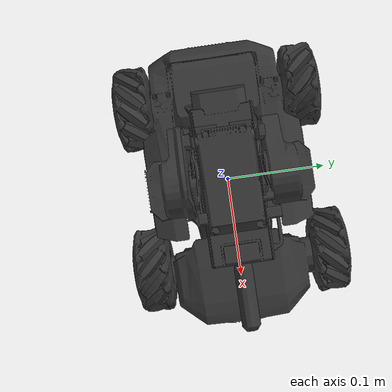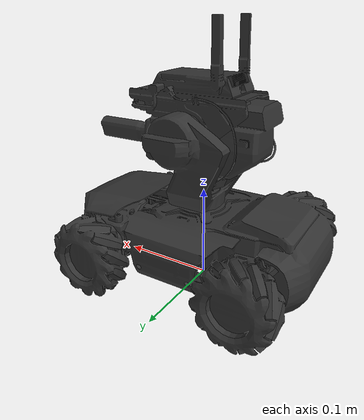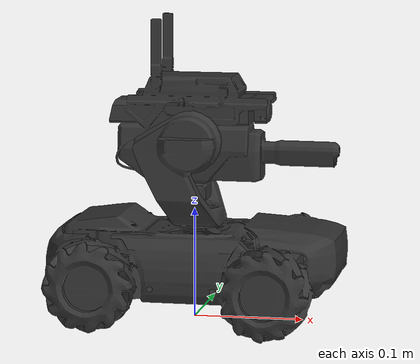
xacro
<?xml version="1.0"?>
<robot name="robomaster_s1"
  xmlns:xacro="http://www.ros.org/wiki/xacro">
  <xacro:property name="PI" value="3.1415926535897931" />

  <material name="dark_grey">
    <color rgba="0.2 0.2 0.2 1.0" />
  </material>

  <!-- base_link to base -->
  <link name="base_link"/>
  <joint name="base_link_joint" type="fixed">
    <origin xyz="0 0 0" rpy="0 0 0" />
    <parent link="base_link"/>
    <child link="base" />
  </joint>

  <!-- Definition of robot base -->
  <link name="base">
    <visual>
      <origin xyz="0 0 0" rpy="0 0 ${PI/2.0}"/>
      <geometry>
        <mesh filename="package://robomaster_description/meshes/visual/base.stl"/>
      </geometry>
      <material name="dark_grey" />
    </visual>
    <inertial>
      <!-- Center of mass, Dummy TODO -->
      <origin xyz="0 0 0" rpy="0 0 0"/>
      <mass value="1.0"/>
      <!-- Moments of inertia: ( chassis without wheels ) -->
      <inertia ixx="1e-5" ixy="0" ixz="0" iyy="1e-5" iyz="0" izz="1e-5"/>
    </inertial>
  </link>

  <!-- First axis of gimbal -->
  <joint name="gimbal_yaw_joint" type="revolute">
    <origin xyz="0 0 0.09" rpy="0 0 0" />
    <axis xyz="0 0 1"/>
    <parent link="base"/>
    <child link="gimbal_base" />
    <limit effort="1000.0" lower="${-1.5*PI}" upper="${1.5*PI}" velocity="${2.0*PI}"/>
  </joint>

  <!-- Base of gimbal -->
  <link name="gimbal_base">
    <visual>
      <origin xyz="0 0 -0.09" rpy="0 0 ${PI/2.0}"/>
      <geometry>
        <mesh filename="package://robomaster_description/meshes/visual/gimbal_base.stl"/>
      </geometry>
      <material name="dark_grey" />
    </visual>
    <inertial>
      <!-- Center of mass, Dummy TODO -->
      <origin xyz="0 0 0" rpy="0 0 0"/>
      <mass value="1.0"/>
      <!-- Moments of inertia: ( chassis without wheels ) -->
      <inertia ixx="1e-5" ixy="0" ixz="0" iyy="1e-5" iyz="0" izz="1e-5"/>
    </inertial>
  </link>

  <!-- Second axis of gimbal -->
  <joint name="gimbal_pitch_joint" type="revolute">
    <origin xyz="0 0 0.075" rpy="0 0 0" />
    <axis xyz="0 1 0"/>
    <parent link="gimbal_base"/>
    <child link="gimbal_head" />
    <limit effort="1000.0" lower="${-PI/4.0}" upper="${PI/4.0}" velocity="${2.0*PI}"/>
  </joint>

  <!-- Gimbal head -->
  <link name="gimbal_head">
    <visual>
      <origin xyz="0 0 -0.165" rpy="0 0 ${PI/2.0}"/>
      <geometry>
        <mesh filename="package://robomaster_description/meshes/visual/gimbal_head.stl"/>
      </geometry>
      <material name="dark_grey" />
    </visual>
    <inertial>
      <!-- Center of mass, Dummy TODO -->
      <origin xyz="0 0 0" rpy="0 0 0"/>
      <mass value="1.0"/>
      <!-- Moments of inertia: ( chassis without wheels ) -->
      <inertia ixx="1e-5" ixy="0" ixz="0" iyy="1e-5" iyz="0" izz="1e-5"/>
    </inertial>
  </link>

  <!-- IMU -->
  <link name="imu_link"/>
  <joint name="base_to_imu" type="fixed">
    <origin xyz="-0.1 0 0.07" rpy="0 0 0" />
    <parent link="base"/>
    <child link="imu_link" />
  </joint>

 <!-- Camera -->
  <link name="camera_link"/>
  <joint name="head_to_cam" type="fixed">
    <origin xyz="0.0673 0 0.0243" rpy="0 0 0" />
    <parent link="gimbal_head"/>
    <child link="camera_link" />
  </joint>

  <link name="camera_link_optical_frame"/>
<joint name="cam_to_optical" type="fixed">
    <origin xyz="0 0 0" rpy="${-PI/2.0} 0 ${-PI/2.0}" />
    <parent link="camera_link"/>
    <child link="camera_link_optical_frame" />
  </joint>

</robot>
